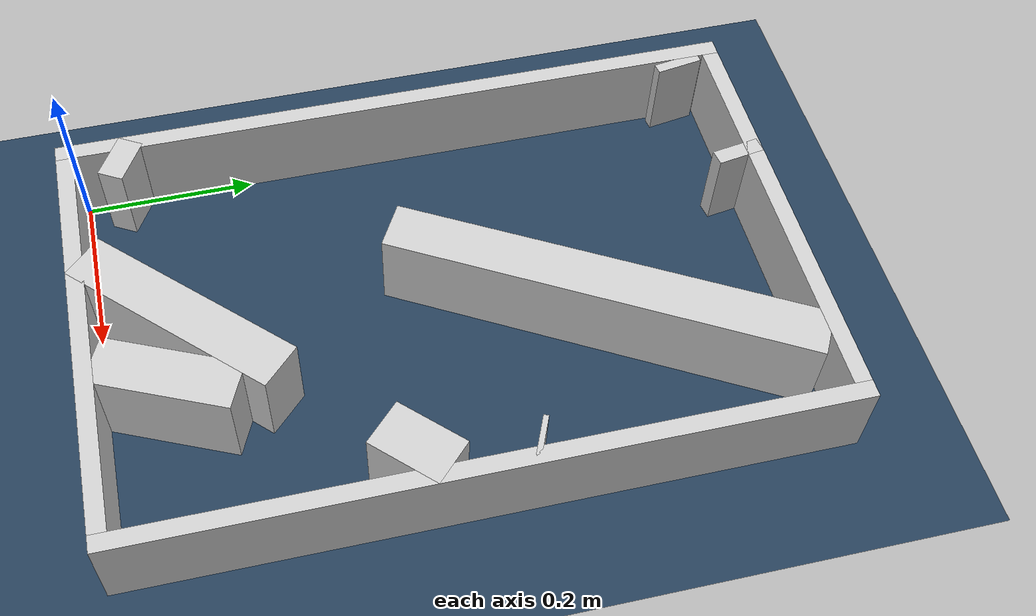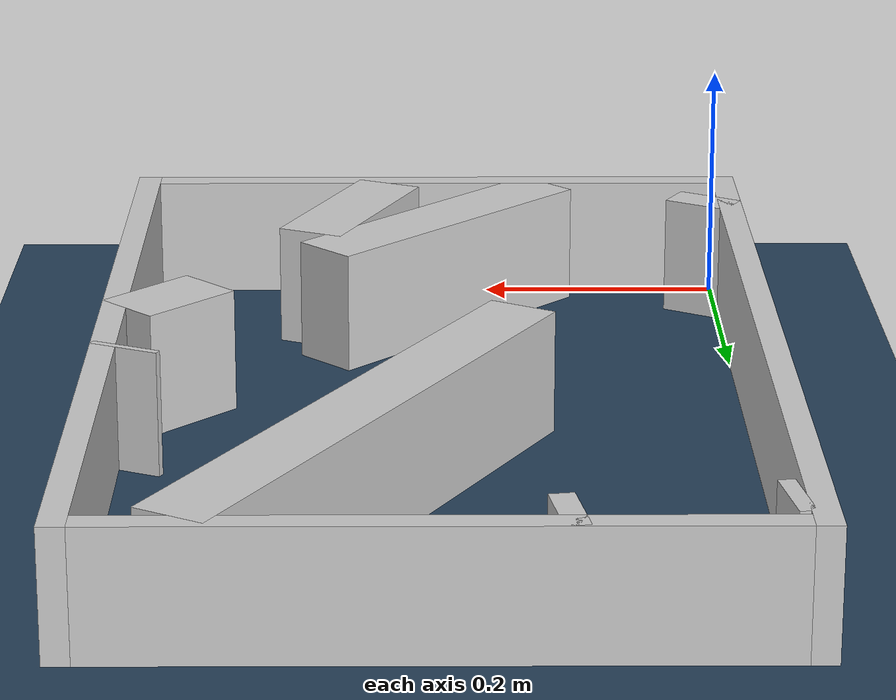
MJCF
<?xml version="1.0" ?>
<mujoco model="generated_real_template">
  <compiler angle="degree"/>
  <option timestep="0.002" integrator="implicitfast" iterations="100" cone="elliptic"/>
  <default>
    <geom density="1"/>
  </default>
  <asset>
    <texture builtin="gradient" height="3072" rgb1="0.3 0.5 0.7" rgb2="0 0 0" type="skybox" width="512"/>
    <texture builtin="checker" height="300" mark="edge" markrgb="0.8 0.8 0.8" name="groundplane" rgb1="0.2 0.3 0.4" rgb2="0.1 0.2 0.3" type="2d" width="300"/>
    <material name="groundplane" reflectance="0.2" texrepeat="5 5" texture="groundplane" texuniform="true"/>
  </asset>
  <worldbody>
    <light dir="0 0 -1" directional="true" pos="0 0 1.5"/>
    <geom name="floor" type="plane" condim="4" friction="0.5 0.005 0.001" material="groundplane" size="0 0 0.05"/>
    <body name="walls">
      <geom name="wall_boundary_left" type="box" condim="4" friction="1.0 0.005 0.0001" rgba="0.8 0.8 0.8 1" pos="-0.010000 0.387500 0.050000" euler="0 0 0.000000" size="0.010000 0.407500 0.050000"/>
      <geom name="wall_boundary_right" type="box" condim="4" friction="1.0 0.005 0.0001" rgba="0.8 0.8 0.8 1" pos="0.500000 0.387500 0.050000" euler="0 0 0.000000" size="0.010000 0.407500 0.050000"/>
      <geom name="wall_boundary_bottom" type="box" condim="4" friction="1.0 0.005 0.0001" rgba="0.8 0.8 0.8 1" pos="0.245000 -0.010000 0.050000" euler="0 0 0.000000" size="0.245000 0.010000 0.050000"/>
      <geom name="wall_boundary_top" type="box" condim="4" friction="1.0 0.005 0.0001" rgba="0.8 0.8 0.8 1" pos="0.245000 0.785000 0.050000" euler="0 0 0.000000" size="0.245000 0.010000 0.050000"/>
      <geom name="wall_inner_1_1" type="box" condim="4" friction="1.0 0.005 0.0001" rgba="0.8 0.8 0.8 1" pos="0.458696 0.315741 0.050000" euler="0 0 -134.640985" size="0.044153 0.028500 0.050000"/>
      <geom name="wall_inner_1_2" type="box" condim="4" friction="1.0 0.005 0.0001" rgba="0.8 0.8 0.8 1" pos="0.242938 0.097262 0.050000" euler="0 0 -134.640985" size="0.136657 0.028500 0.050000"/>
      <geom name="wall_inner_2_1" type="box" condim="4" friction="1.0 0.005 0.0001" rgba="0.8 0.8 0.8 1" pos="0.006282 0.741151 0.050000" euler="0 0 8.986721" size="0.006360 0.028500 0.050000"/>
      <geom name="wall_inner_2_2" type="box" condim="4" friction="1.0 0.005 0.0001" rgba="0.8 0.8 0.8 1" pos="0.159540 0.765388 0.050000" euler="0 0 8.986721" size="0.009353 0.028500 0.050000"/>
      <geom name="wall_inner_3_1" type="box" condim="4" friction="1.0 0.005 0.0001" rgba="0.8 0.8 0.8 1" pos="0.482745 0.439553 0.050000" euler="0 0 -114.051285" size="0.003013 0.028500 0.050000"/>
      <geom name="wall_inner_3_2" type="box" condim="4" friction="1.0 0.005 0.0001" rgba="0.8 0.8 0.8 1" pos="0.319402 0.073561 0.050000" euler="0 0 -114.051285" size="0.080555 0.028500 0.050000"/>
      <geom name="wall_inner_4_1" type="box" condim="4" friction="1.0 0.005 0.0001" rgba="0.8 0.8 0.8 1" pos="0.301523 0.559033 0.050000" euler="0 0 -119.801900" size="0.248881 0.028500 0.050000"/>
      <geom name="wall_inner_4_2" type="box" condim="4" friction="1.0 0.005 0.0001" rgba="0.8 0.8 0.8 1" pos="0.012403 0.054241 0.050000" euler="0 0 -119.801900" size="0.015436 0.028500 0.050000"/>
    </body>
  </worldbody>
</mujoco>
